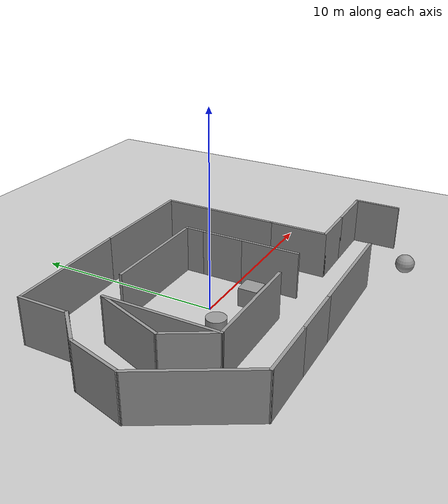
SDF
<sdf version="1.7">
 <world name="default">
  <light name="sun" type="directional">
   <pose>0 0 10 0 -0 0</pose>
   <diffuse>0.8 0.8 0.8 1</diffuse>
   <specular>0.2 0.2 0.2 1</specular>
   <attenuation>
    <range>1000</range>
    <constant>0.9</constant>
    <linear>0.01</linear>
    <quadratic>0.001</quadratic>
   </attenuation>
   <direction>-0.5 0.1 -0.9</direction>
   <spot><inner_angle>0</inner_angle><outer_angle>0</outer_angle><falloff>0</falloff></spot>
  </light>
  <model name="ground_plane">
   <static>1</static>
   <link name="link">
    <collision name="collision">
     <geometry><plane><normal>0 0 1</normal><size>100 100</size></plane></geometry>
     <surface><friction><ode><mu>100</mu><mu2>50</mu2></ode></friction></surface>
    </collision>
    <visual name="visual">
     <cast_shadows>0</cast_shadows>
     <geometry><plane><normal>0 0 1</normal><size>100 100</size></plane></geometry>
     <material>
      <script><uri>file://media/materials/scripts/gazebo.material</uri><name>Gazebo/Grey</name></script>
     </material>
    </visual>
   </link>
  </model>
  <gravity>0 0 -9.8</gravity>
  <magnetic_field>6e-06 2.3e-05 -4.2e-05</magnetic_field>
  <atmosphere type="adiabatic"/>
  <physics type="ode">
   <max_step_size>0.001</max_step_size>
   <real_time_factor>1</real_time_factor>
   <real_time_update_rate>1000</real_time_update_rate>
  </physics>
  <scene><ambient>0.4 0.4 0.4 1</ambient><background>0.7 0.7 0.7 1</background><shadows>1</shadows></scene>
  <audio><device>default</device></audio>
  <spherical_coordinates>
   <surface_model>EARTH_WGS84</surface_model>
   <latitude_deg>0</latitude_deg>
   <longitude_deg>0</longitude_deg>
   <elevation>0</elevation>
   <heading_deg>0</heading_deg>
  </spherical_coordinates>
  <model name="Untitled2">
   <pose>1.11627 -0.063086 0 0 -0 0</pose>
   <link name="Wall_12">
    <collision name="Wall_12_Collision">
     <geometry><box><size>6 0.15 2.5</size></box></geometry>
     <pose>0 0 1.25 0 -0 0</pose>
    </collision>
    <visual name="Wall_12_Visual">
     <pose>0 0 1.25 0 -0 0</pose>
     <geometry><box><size>6 0.15 2.5</size></box></geometry>
     <material>
      <script><uri>file://media/materials/scripts/gazebo.material</uri><name>Gazebo/Grey</name></script>
      <ambient>1 1 1 1</ambient>
     </material>
     <meta><layer>0</layer></meta>
    </visual>
    <pose>1.78873 -5.88691 0 0 -0 3.14159</pose>
   </link>
   <link name="Wall_13">
    <collision name="Wall_13_Collision">
     <geometry><box><size>3 0.15 2.5</size></box></geometry>
     <pose>0 0 1.25 0 -0 0</pose>
    </collision>
    <visual name="Wall_13_Visual">
     <pose>0 0 1.25 0 -0 0</pose>
     <geometry><box><size>3 0.15 2.5</size></box></geometry>
     <material>
      <script><uri>file://media/materials/scripts/gazebo.material</uri><name>Gazebo/Grey</name></script>
      <ambient>1 1 1 1</ambient>
     </material>
     <meta><layer>0</layer></meta>
    </visual>
    <pose>-2.56127 -5.88691 0 0 -0 3.14159</pose>
   </link>
   <link name="Wall_14">
    <collision name="Wall_14_Collision">
     <geometry><box><size>3.25 0.15 2.5</size></box></geometry>
     <pose>0 0 1.25 0 -0 0</pose>
    </collision>
    <visual name="Wall_14_Visual">
     <pose>0 0 1.25 0 -0 0</pose>
     <geometry><box><size>3.25 0.15 2.5</size></box></geometry>
     <material>
      <script><uri>file://media/materials/scripts/gazebo.material</uri><name>Gazebo/Grey</name></script>
      <ambient>1 1 1 1</ambient>
     </material>
     <meta><layer>0</layer></meta>
    </visual>
    <pose>-5.53627 -5.88691 0 0 -0 3.14159</pose>
   </link>
   <link name="Wall_15">
    <collision name="Wall_15_Collision">
     <geometry><box><size>5.75 0.15 2.5</size></box></geometry>
     <pose>0 0 1.25 0 -0 0</pose>
    </collision>
    <visual name="Wall_15_Visual">
     <pose>0 0 1.25 0 -0 0</pose>
     <geometry><box><size>5.75 0.15 2.5</size></box></geometry>
     <material>
      <script><uri>file://media/materials/scripts/gazebo.material</uri><name>Gazebo/Grey</name></script>
      <ambient>1 1 1 1</ambient>
     </material>
     <meta><layer>0</layer></meta>
    </visual>
    <pose>-8.48627 -3.46204 0 0 -0 2.0944</pose>
   </link>
   <link name="Wall_16">
    <collision name="Wall_16_Collision">
     <geometry><box><size>3 0.15 2.5</size></box></geometry>
     <pose>0 0 1.25 0 -0 0</pose>
    </collision>
    <visual name="Wall_16_Visual">
     <pose>0 0 1.25 0 -0 0</pose>
     <geometry><box><size>3 0.15 2.5</size></box></geometry>
     <material>
      <script><uri>file://media/materials/scripts/gazebo.material</uri><name>Gazebo/Grey</name></script>
      <ambient>1 1 1 1</ambient>
     </material>
     <meta><layer>0</layer></meta>
    </visual>
    <pose>-9.51746 0.339272 0 0 -0 1.309</pose>
   </link>
   <link name="Wall_17">
    <collision name="Wall_17_Collision">
     <geometry><box><size>2.25 0.15 2.5</size></box></geometry>
     <pose>0 0 1.25 0 -0 0</pose>
    </collision>
    <visual name="Wall_17_Visual">
     <pose>0 0 1.25 0 -0 0</pose>
     <geometry><box><size>2.25 0.15 2.5</size></box></geometry>
     <material>
      <script><uri>file://media/materials/scripts/gazebo.material</uri><name>Gazebo/Grey</name></script>
      <ambient>1 1 1 1</ambient>
     </material>
     <meta><layer>0</layer></meta>
    </visual>
    <pose>-8.40618 2.45818 0 0 -0 0.785398</pose>
   </link>
   <link name="Wall_18">
    <collision name="Wall_18_Collision">
     <geometry><box><size>2.75 0.15 2.5</size></box></geometry>
     <pose>0 0 1.25 0 -0 0</pose>
    </collision>
    <visual name="Wall_18_Visual">
     <pose>0 0 1.25 0 -0 0</pose>
     <geometry><box><size>2.75 0.15 2.5</size></box></geometry>
     <material>
      <script><uri>file://media/materials/scripts/gazebo.material</uri><name>Gazebo/Grey</name></script>
      <ambient>1 1 1 1</ambient>
     </material>
     <meta><layer>0</layer></meta>
    </visual>
    <pose>-7.66371 4.50064 0 0 -0 1.5708</pose>
   </link>
   <link name="Wall_19">
    <collision name="Wall_19_Collision">
     <geometry><box><size>6.67841 0.15 2.5</size></box></geometry>
     <pose>0 0 1.25 0 -0 0</pose>
    </collision>
    <visual name="Wall_19_Visual">
     <pose>0 0 1.25 0 -0 0</pose>
     <geometry><box><size>6.67841 0.15 2.5</size></box></geometry>
     <material>
      <script><uri>file://media/materials/scripts/gazebo.material</uri><name>Gazebo/Grey</name></script>
      <ambient>1 1 1 1</ambient>
     </material>
     <meta><layer>0</layer></meta>
    </visual>
    <pose>-4.39999 5.85686 0 0 -0 0.017225</pose>
   </link>
   <link name="Wall_23">
    <collision name="Wall_23_Collision">
     <geometry><box><size>2.25 0.15 2.5</size></box></geometry>
     <pose>0 0 1.25 0 -0 0</pose>
    </collision>
    <visual name="Wall_23_Visual">
     <pose>0 0 1.25 0 -0 0</pose>
     <geometry><box><size>2.25 0.15 2.5</size></box></geometry>
     <material>
      <script><uri>file://media/materials/scripts/gazebo.material</uri><name>Gazebo/Grey</name></script>
      <ambient>1 1 1 1</ambient>
     </material>
     <meta><layer>0</layer></meta>
    </visual>
    <pose>1.96373 1.01309 0 0 -0 1.5708</pose>
   </link>
   <link name="Wall_25">
    <collision name="Wall_25_Collision">
     <geometry><box><size>1.25 0.15 2.5</size></box></geometry>
     <pose>0 0 1.25 0 -0 0</pose>
    </collision>
    <visual name="Wall_25_Visual">
     <pose>0 0 1.25 0 -0 0</pose>
     <geometry><box><size>1.25 0.15 2.5</size></box></geometry>
     <material>
      <script><uri>file://media/materials/scripts/gazebo.material</uri><name>Gazebo/Grey</name></script>
      <ambient>1 1 1 1</ambient>
     </material>
     <meta><layer>0</layer></meta>
    </visual>
    <pose>1.96373 2.61309 0 0 -0 1.5708</pose>
   </link>
   <link name="Wall_26">
    <collision name="Wall_26_Collision">
     <geometry><box><size>6 0.15 2.5</size></box></geometry>
     <pose>0 0 1.25 0 -0 0</pose>
    </collision>
    <visual name="Wall_26_Visual">
     <pose>0 0 1.25 0 -0 0</pose>
     <geometry><box><size>6 0.15 2.5</size></box></geometry>
     <material>
      <script><uri>file://media/materials/scripts/gazebo.material</uri><name>Gazebo/Grey</name></script>
      <ambient>1 1 1 1</ambient>
     </material>
     <meta><layer>0</layer></meta>
    </visual>
    <pose>-0.961274 3.16309 0 0 -0 3.14159</pose>
   </link>
   <link name="Wall_28">
    <collision name="Wall_28_Collision">
     <geometry><box><size>3.25 0.15 2.5</size></box></geometry>
     <pose>0 0 1.25 0 -0 0</pose>
    </collision>
    <visual name="Wall_28_Visual">
     <pose>0 0 1.25 0 -0 0</pose>
     <geometry><box><size>3.25 0.15 2.5</size></box></geometry>
     <material>
      <script><uri>file://media/materials/scripts/gazebo.material</uri><name>Gazebo/Grey</name></script>
      <ambient>1 1 1 1</ambient>
     </material>
     <meta><layer>0</layer></meta>
    </visual>
    <pose>1.96373 -1.58691 0 0 -0 -1.5708</pose>
   </link>
   <link name="Wall_30">
    <collision name="Wall_30_Collision">
     <geometry><box><size>6 0.15 2.5</size></box></geometry>
     <pose>0 0 1.25 0 -0 0</pose>
    </collision>
    <visual name="Wall_30_Visual">
     <pose>0 0 1.25 0 -0 0</pose>
     <geometry><box><size>6 0.15 2.5</size></box></geometry>
     <material>
      <script><uri>file://media/materials/scripts/gazebo.material</uri><name>Gazebo/Grey</name></script>
      <ambient>1 1 1 1</ambient>
     </material>
     <meta><layer>0</layer></meta>
    </visual>
    <pose>-5.87532 -0.230534 0 0 -0 -1.5708</pose>
   </link>
   <link name="Wall_31">
    <collision name="Wall_31_Collision">
     <geometry><box><size>5.75 0.15 2.5</size></box></geometry>
     <pose>0 0 1.25 0 -0 0</pose>
    </collision>
    <visual name="Wall_31_Visual">
     <pose>0 0 1.25 0 -0 0</pose>
     <geometry><box><size>5.75 0.15 2.5</size></box></geometry>
     <material>
      <script><uri>file://media/materials/scripts/gazebo.material</uri><name>Gazebo/Grey</name></script>
      <ambient>1 1 1 1</ambient>
     </material>
     <meta><layer>0</layer></meta>
    </visual>
    <pose>-3.07532 -3.15553 0 0 -0 0</pose>
   </link>
   <link name="Wall_33">
    <collision name="Wall_33_Collision">
     <geometry><box><size>2.75 0.15 2.5</size></box></geometry>
     <pose>0 0 1.25 0 -0 0</pose>
    </collision>
    <visual name="Wall_33_Visual">
     <pose>0 0 1.25 0 -0 0</pose>
     <geometry><box><size>2.75 0.15 2.5</size></box></geometry>
     <material>
      <script><uri>file://media/materials/scripts/gazebo.material</uri><name>Gazebo/Grey</name></script>
      <ambient>1 1 1 1</ambient>
     </material>
     <meta><layer>0</layer></meta>
    </visual>
    <pose>-6.52532 -2.0297 0 0 -0 2.0944</pose>
   </link>
   <link name="Wall_34">
    <collision name="Wall_34_Collision">
     <geometry><box><size>3.97596 0.15 2.5</size></box></geometry>
     <pose>0 0 1.25 0 -0 0</pose>
    </collision>
    <visual name="Wall_34_Visual">
     <pose>0 0 1.25 0 -0 0</pose>
     <geometry><box><size>3.97596 0.15 2.5</size></box></geometry>
     <material>
      <script><uri>file://media/materials/scripts/gazebo.material</uri><name>Gazebo/Grey</name></script>
      <ambient>1 1 1 1</ambient>
     </material>
     <meta><layer>0</layer></meta>
    </visual>
    <pose>-6.52532 0.895299 0 0 -0 1.22411</pose>
   </link>
   <link name="Wall_36">
    <collision name="Wall_36_Collision">
     <geometry><box><size>2.5 0.15 2.5</size></box></geometry>
     <pose>0 0 1.25 0 -0 0</pose>
    </collision>
    <visual name="Wall_36_Visual">
     <pose>0 0 1.25 0 -0 0</pose>
     <geometry><box><size>2.5 0.15 2.5</size></box></geometry>
     <material>
      <script><uri>file://media/materials/scripts/gazebo.material</uri><name>Gazebo/Grey</name></script>
      <ambient>1 1 1 1</ambient>
     </material>
     <meta><layer>0</layer></meta>
    </visual>
    <pose>5.88873 -3.53691 0 0 -0 0</pose>
   </link>
   <link name="Wall_37">
    <collision name="Wall_37_Collision">
     <geometry><box><size>3 0.15 2.5</size></box></geometry>
     <pose>0 0 1.25 0 -0 0</pose>
    </collision>
    <visual name="Wall_37_Visual">
     <pose>0 0 1.25 0 -0 0</pose>
     <geometry><box><size>3 0.15 2.5</size></box></geometry>
     <material>
      <script><uri>file://media/materials/scripts/gazebo.material</uri><name>Gazebo/Grey</name></script>
      <ambient>1 1 1 1</ambient>
     </material>
     <meta><layer>0</layer></meta>
    </visual>
    <pose>8.48873 -3.53691 0 0 -0 0</pose>
   </link>
   <link name="Wall_38">
    <collision name="Wall_38_Collision">
     <geometry><box><size>2.5 0.15 2.5</size></box></geometry>
     <pose>0 0 1.25 0 -0 0</pose>
    </collision>
    <visual name="Wall_38_Visual">
     <pose>0 0 1.25 0 -0 0</pose>
     <geometry><box><size>2.5 0.15 2.5</size></box></geometry>
     <material>
      <script><uri>file://media/materials/scripts/gazebo.material</uri><name>Gazebo/Grey</name></script>
      <ambient>1 1 1 1</ambient>
     </material>
     <meta><layer>0</layer></meta>
    </visual>
    <pose>9.91373 -4.71191 0 0 -0 -1.5708</pose>
   </link>
   <link name="Wall_7">
    <collision name="Wall_7_Collision">
     <geometry><box><size>6 0.15 2.5</size></box></geometry>
     <pose>0 0 1.25 0 -0 0</pose>
    </collision>
    <visual name="Wall_7_Visual">
     <pose>0 0 1.25 0 -0 0</pose>
     <geometry><box><size>6 0.15 2.5</size></box></geometry>
     <material>
      <script><uri>file://media/materials/scripts/gazebo.material</uri><name>Gazebo/Grey</name></script>
      <ambient>1 1 1 1</ambient>
     </material>
     <meta><layer>0</layer></meta>
    </visual>
    <pose>1.78873 5.91309 0 0 -0 0</pose>
   </link>
   <link name="Wall_8">
    <collision name="Wall_8_Collision">
     <geometry><box><size>6.5 0.15 2.5</size></box></geometry>
     <pose>0 0 1.25 0 -0 0</pose>
    </collision>
    <visual name="Wall_8_Visual">
     <pose>0 0 1.25 0 -0 0</pose>
     <geometry><box><size>6.5 0.15 2.5</size></box></geometry>
     <material>
      <script><uri>file://media/materials/scripts/gazebo.material</uri><name>Gazebo/Grey</name></script>
      <ambient>1 1 1 1</ambient>
     </material>
     <meta><layer>0</layer></meta>
    </visual>
    <pose>4.71373 2.73809 0 0 -0 -1.5708</pose>
   </link>
   <link name="Wall_9">
    <collision name="Wall_9_Collision">
     <geometry><box><size>3.25 0.15 2.5</size></box></geometry>
     <pose>0 0 1.25 0 -0 0</pose>
    </collision>
    <visual name="Wall_9_Visual">
     <pose>0 0 1.25 0 -0 0</pose>
     <geometry><box><size>3.25 0.15 2.5</size></box></geometry>
     <material>
      <script><uri>file://media/materials/scripts/gazebo.material</uri><name>Gazebo/Grey</name></script>
      <ambient>1 1 1 1</ambient>
     </material>
     <meta><layer>0</layer></meta>
    </visual>
    <pose>4.71373 -1.98691 0 0 -0 -1.5708</pose>
   </link>
   <static>1</static>
  </model>
  <model name="unit_cylinder">
   <pose>-1.83595 -1.37099 0.499997 3e-06 4e-06 -0</pose>
   <link name="link">
    <inertial>
     <mass>1</mass>
     <inertia><ixx>0.145833</ixx><ixy>0</ixy><ixz>0</ixz><iyy>0.145833</iyy><iyz>0</iyz><izz>0.125</izz></inertia>
    </inertial>
    <collision name="collision">
     <geometry><cylinder><radius>0.5</radius><length>1</length></cylinder></geometry>
    </collision>
    <visual name="visual">
     <geometry><cylinder><radius>0.5</radius><length>1</length></cylinder></geometry>
     <material>
      <script><name>Gazebo/Grey</name><uri>file://media/materials/scripts/gazebo.material</uri></script>
     </material>
    </visual>
   </link>
  </model>
  <model name="unit_box">
   <pose>1.49173 -1.51863 0.499995 -1e-05 -0 0</pose>
   <link name="link">
    <inertial>
     <mass>1</mass>
     <inertia>
      <ixx>0.166667</ixx>
      <ixy>0</ixy>
      <ixz>0</ixz>
      <iyy>0.166667</iyy>
      <iyz>0</iyz>
      <izz>0.166667</izz>
     </inertia>
    </inertial>
    <collision name="collision"><geometry><box><size>1 1 1</size></box></geometry></collision>
    <visual name="visual">
     <geometry><box><size>1 1 1</size></box></geometry>
     <material>
      <script><name>Gazebo/Grey</name><uri>file://media/materials/scripts/gazebo.material</uri></script>
     </material>
    </visual>
   </link>
  </model>
  <model name="unit_sphere">
   <pose>8.42719 -7.28709 0.5 0 -0 0</pose>
   <link name="link">
    <inertial>
     <mass>1</mass>
     <inertia><ixx>0.1</ixx><ixy>0</ixy><ixz>0</ixz><iyy>0.1</iyy><iyz>0</iyz><izz>0.1</izz></inertia>
    </inertial>
    <collision name="collision"><geometry><sphere><radius>0.5</radius></sphere></geometry></collision>
    <visual name="visual">
     <geometry><sphere><radius>0.5</radius></sphere></geometry>
     <material>
      <script><name>Gazebo/Grey</name><uri>file://media/materials/scripts/gazebo.material</uri></script>
     </material>
    </visual>
   </link>
  </model>
 </world>
</sdf>
